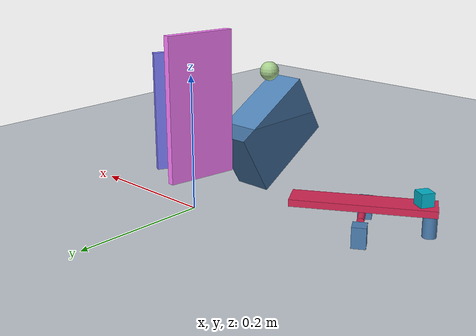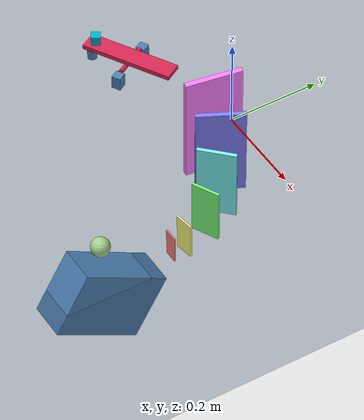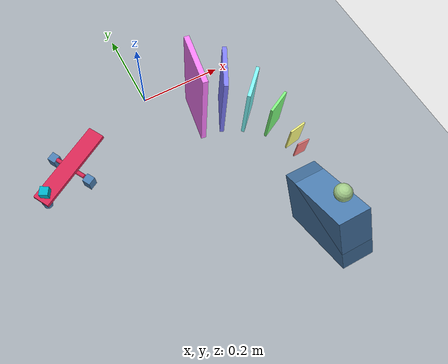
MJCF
<mujoco>
  <!-- 资源定义：纹理和材质 -->
  <asset>
    <!-- 天空盒纹理：渐变背景 -->
    <texture type="skybox" builtin="gradient" rgb1=".3 .5 .7" rgb2="0 0 0" width="32" height="512"/>
    <!-- 网格纹理：棋盘格图案 -->
    <texture name="grid" type="2d" builtin="checker" width="512" height="512" rgb1=".1 .2 .3" rgb2=".2 .3 .4"/>
    <!-- 网格材质：应用网格纹理 -->
    <material name="grid" texture="grid" texrepeat="2 2" texuniform="true" reflectance=".2"/>
  </asset>

  <!-- 统计信息：设置平均尺寸 -->
  <statistic meansize=".01"/>

  <!-- 视觉设置：渲染参数 -->
  <visual>
    <global offheight="2160" offwidth="3840"/>
    <quality offsamples="8"/>
  </visual>

  <!-- 默认参数：几何体属性 -->
  <default>
    <geom type="box" solref=".005 1"/>
    <default class="static">
      <geom rgba=".3 .5 .7 1"/>
    </default>
  </default>

  <!-- 仿真选项：时间步长 -->
  <option timestep="5e-4"/>

  <worldbody>
    <!-- 环境几何体：地板、斜坡、光源、固定相机 -->
    <geom name="floor" type="plane" size="3 3 .01" pos="-0.025 -0.295  0" material="grid"/>
    <geom name="ramp" pos=".25 -.45 -.03" size=".04 .1 .07" euler="-30 0 0" class="static"/>

    <!-- 光源设置 -->
    <light pos=".3 -.3 .8" mode="trackcom" diffuse="1 1 1" specular=".3 .3 .3"/>
    <light pos="0 -.3 .4" mode="targetbodycom" target="box" diffuse=".8 .8 .8" specular=".3 .3 .3"/>

    <!-- 固定相机：顶部视角 -->
    <camera name="top" pos="-0.37 -0.78 0.49" xyaxes="0.78 -0.63 0 0.27 0.33 0.9"/>

    <!-- 包含球体和盒子 -->
    <include file="ball_and_box.xml"/>

    <!-- 包含多米诺骨牌序列 -->
    <include file="domino_chain.xml"/>

    <!-- 包含跷跷板结构 -->
    <include file="seesaw.xml"/>
  </worldbody>
</mujoco>

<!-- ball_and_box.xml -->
<mujoco>
    <!-- 球体：从斜坡滚下的初始物体 -->
  <body name="ball" pos=".25 -.45 .1">
    <freejoint name="ball"/>  <!-- 自由关节：6自由度运动 -->
    <geom name="ball" type="sphere" size=".02" rgba=".65 .81 .55 1"/>
  </body>

  <!-- 目标盒子：将被骨牌撞击的物体 -->
  <body name="box" pos="-.3 -.14 .05501" euler="0 0 -30">
    <freejoint name="box"/>  <!-- 自由关节：可被撞击移动 -->
    <geom name="box" size=".01 .01 .01" rgba=".0 .7 .79 1"/>
  </body>
</mujoco>

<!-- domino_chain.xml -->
<mujoco>
  <!-- 多米诺骨牌序列：6个按角度排列的骨牌 -->

  <!-- 第一个骨牌：-90度 -->
  <body pos=".26 -.3 .03" euler="0 0 -90.0">
    <freejoint/>
    <geom size=".0015 .015 .03" rgba="1 .5 .5 1"/>
  </body>

  <!-- 第二个骨牌：-81度 -->
  <body pos=".26 -.27 .04" euler="0 0 -81.0">
    <freejoint/>
    <geom size=".002 .02 .04" rgba="1 1 .5 1"/>
  </body>

  <!-- 第三个骨牌：-63度 -->
  <body pos=".24 -.21 .06" euler="0 0 -63.0">
    <freejoint/>
    <geom size=".003 .03 .06" rgba=".5 1 .5 1"/>
  </body>

  <!-- 第四个骨牌：-45度 -->
  <body pos=".2 -.16 .08" euler="0 0 -45.0">
    <freejoint/>
    <geom size=".004 .04 .08" rgba=".5 1 1 1"/>
  </body>

  <!-- 第五个骨牌：-27度 -->
  <body pos=".15 -.12 .1" euler="0 0 -27.0">
    <freejoint/>
    <geom size=".005 .05 .1" rgba=".5 .5 1 1"/>
  </body>

  <!-- 第六个骨牌：-9度 -->
  <body pos=".09 -.1 .12" euler="0 0 -9.0">
    <freejoint/>
    <geom size=".006 .06 .12" rgba="1 .5 1 1"/>
  </body>
</mujoco>

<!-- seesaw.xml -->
<mujoco>
  <!-- 跷跷板结构 -->
  <body name="seasaw_wrapper" pos="-.23 -.1 0" euler="0 0 30">
    <geom size=".01 .01 .015" pos="0 .05 .015" class="static"/>
    <geom size=".01 .01 .015" pos="0 -.05 .015" class="static"/>
    <geom type="cylinder" size=".01 .0175" pos="-.09 0 .0175" class="static"/>
    <body name="seasaw" pos="0 0 .03">
      <joint axis="0 1 0"/>  <!-- 旋转关节：绕Y轴旋转 -->
      <geom type="cylinder" size=".005 .039" zaxis="0 1 0" rgba=".84 .15 .33 1"/>
      <geom size=".1 .02 .005" pos="0 0 .01" rgba=".84 .15 .33 1"/>
    </body>
  </body>
</mujoco>
